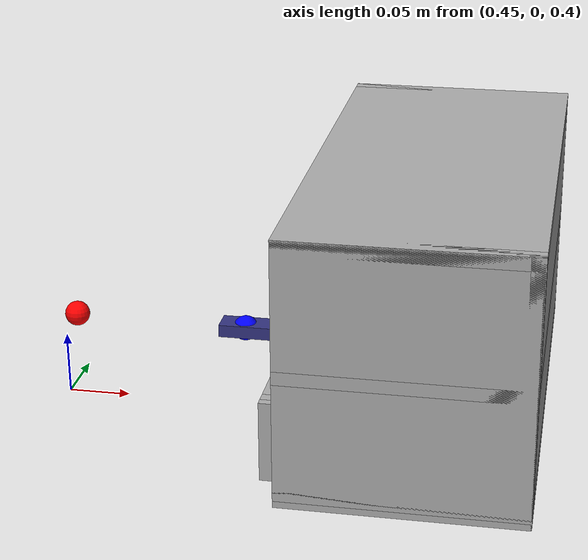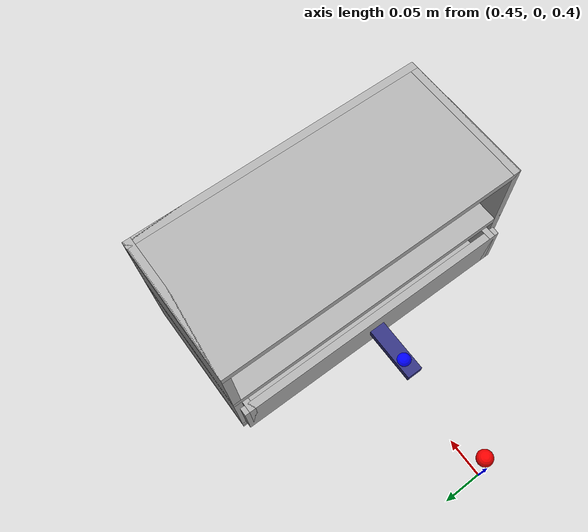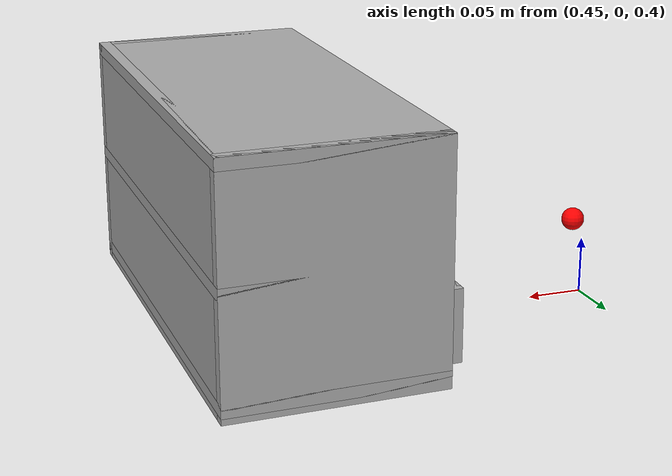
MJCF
<mujoco>
    <worldbody>
        <body name="cupboard" pos="0.66 0.0 0.42" quat="1 0 0 -1" >
            <!--  collision  -->
            <geom type="box" pos="0 0.09 0.195" size="0.19 0.09 0.005" conaffinity="1" condim="3" contype="0" group="1" rgba="0.68 0.68 0.68 1"/>
            <geom type="box" pos="0 0.09 0.10" size="0.19 0.09 0.005" conaffinity="1" condim="3" contype="0" group="1" rgba="0.68 0.68 0.68 1"/>
            <geom type="box" pos="0 0.09 0.01" size="0.19 0.09 0.005" conaffinity="1" condim="3" contype="0" group="1" rgba="0.68 0.68 0.68 1"/>
            <geom type="box" pos="0.185 0.09 0.10" size="0.005 0.09 0.1" conaffinity="1" condim="3" contype="0" group="1" rgba="0.68 0.68 0.68 1"/>
            <geom type="box" pos="-0.185 0.09 0.10" size="0.005 0.09 0.1" conaffinity="1" condim="3" contype="0" group="1" rgba="0.68 0.68 0.68 1"/>
            <geom type="box" pos="0 0.175 0.10" size="0.19 0.005 0.1" conaffinity="1" condim="3" contype="0" group="1" rgba="0.68 0.68 0.68 1"/>

            <site name="drawer_goal" pos="0.0 -0.2 0.05" size="0.01 0.01 0.01" rgba="1 0 0 1" type="sphere" />
            <body name="drawer" pos="0.0 0.0 -0.007">
                <joint name="drawer:joint" type="slide" armature="0.001" damping="1" frictionloss="10" axis='0 -1 0' limited="true" range="0.0 0.14"/>
                <!--  collision  -->
                <geom type="box" pos="0 0.08 0.035" size="0.18 0.08 0.005" conaffinity="1" condim="3" contype="1" group="1" friction="0.001 0.09 0.9" rgba="0.68 0.68 0.68 1" />
                <geom type="box" pos="0 -0.005 0.055" size="0.185 0.005 0.03" conaffinity="1" condim="3" contype="1" group="1" friction="0.001 0.09 0.9" rgba="0.68 0.68 0.68 1" />
                <geom type="box" pos="0.175 0.07 0.055" size="0.004 0.08 0.03" conaffinity="1" condim="3" contype="1" group="1" friction="0.001 0.09 0.9" rgba="0.68 0.68 0.68 1" />
                <geom type="box" pos="-0.175 0.07 0.055" size="0.004 0.08 0.03" conaffinity="1" condim="3" contype="1" group="1" friction="0.001 0.09 0.9" rgba="0.68 0.68 0.68 1" />

                <geom type="box" pos="0 -0.04 0.055" size="0.01 0.04 0.005" conaffinity="1" condim="4" contype="1" group="1" rgba="0.2 0.2 0.5 1"/>

                <site name="drawer" pos="0.0 -0.06 0.055" size="0.01 0.01 0.01" rgba="0 0 1 1" type="sphere" />
            </body>
        </body>
    </worldbody>
</mujoco>
